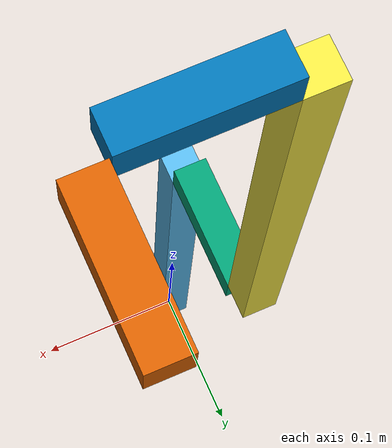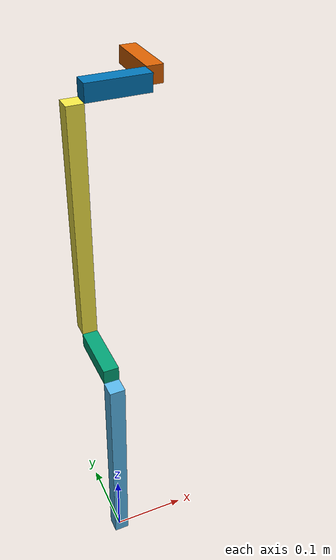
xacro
<?xml version="1.0" encoding="utf-8"?>
<robot xmlns:xacro="http://www.ros.org/wiki/xacro" name="stick">
  <!--Input arguments-->
  <xacro:arg name="xyz" default="0 0 0" />
  <xacro:arg name="rpy" default="0 0 0" />
  <xacro:arg name="robot_name" default="stick" />

  <!--Gazebo requires a joint to a link called "world" for statically mounted robots-->
  <link name="world" />
  <joint name="world_joint" type="fixed">
    <origin xyz="$(arg xyz)" rpy="$(arg rpy)" />
    <parent link="world" />
    <child link="$(arg robot_name)_link1" />
  </joint>

  <!--Create stick example links-->
  <link name="$(arg robot_name)_link1">
    <visual>
      <origin xyz="0 0 0.15" />
      <geometry>
        <box size="0.02 0.02 0.3" />
      </geometry>
    </visual>
    <collision>
      <origin xyz="0 0 0.15" />
      <geometry>
        <box size="0.02 0.02 0.3" />
      </geometry>
    </collision>
    <inertial>
      <origin xyz="0 0 0.15" rpy="0 0 0"/>
      <mass value="0.24"/>
      <inertia ixx="1.808e-03" ixy="0.0" ixz="0.0" iyy="1.808e-03" iyz="0.0" izz="1.6e-05"/>
    </inertial>
  </link>
  <link name="$(arg robot_name)_link2">
    <visual>
      <origin xyz="0 0 0.0375" />
      <geometry>
        <box size="0.02 0.02 0.075" />
      </geometry>
    </visual>
    <collision>
      <origin xyz="0 0 0.0375" />
      <geometry>
        <box size="0.02 0.02 0.075" />
      </geometry>
    </collision>
    <inertial>
      <origin xyz="0 0 0.0375" rpy="0 0 0"/>
      <mass value="0.06"/>
      <inertia ixx="3.0125e-05" ixy="0.0" ixz="0.0" iyy="3.0125e-05" iyz="0.0" izz="4.0000e-06"/>
    </inertial>
  </link>
  <link name="$(arg robot_name)_link3">
    <visual>
      <origin xyz="0 0 0.15" />
      <geometry>
        <box size="0.02 0.02 0.3" />
      </geometry>
    </visual>
    <collision>
      <origin xyz="0 0 0.15" />
      <geometry>
        <box size="0.02 0.02 0.3" />
      </geometry>
    </collision>
    <inertial>
      <origin xyz="0 0 0.15" rpy="0 0 0"/>
      <mass value="0.24"/>
      <inertia ixx="1.808e-03" ixy="0.0" ixz="0.0" iyy="1.808e-03" iyz="0.0" izz="1.6e-05"/>
    </inertial>
  </link>
  <link name="$(arg robot_name)_link4">
    <visual>
      <origin xyz="0 0 0.0375" />
      <geometry>
        <box size="0.02 0.02 0.075" />
      </geometry>
    </visual>
    <collision>
      <origin xyz="0 0 0.0375" />
      <geometry>
        <box size="0.02 0.02 0.075" />
      </geometry>
    </collision>
    <inertial>
      <origin xyz="0 0 0.0375" rpy="0 0 0"/>
      <mass value="0.06"/>
      <inertia ixx="3.0125e-05" ixy="0.0" ixz="0.0" iyy="3.0125e-05" iyz="0.0" izz="4.0000e-06"/>
    </inertial>
  </link>
  <link name="$(arg robot_name)_link5">
    <visual>
      <origin xyz="0 0 0.0375" />
      <geometry>
        <box size="0.02 0.02 0.075" />
      </geometry>
    </visual>
    <collision>
      <origin xyz="0 0 0.0375" />
      <geometry>
        <box size="0.02 0.02 0.075" />
      </geometry>
    </collision>
    <inertial>
      <origin xyz="0 0 0.0375" rpy="0 0 0"/>
      <mass value="0.06"/>
      <inertia ixx="3.0125e-05" ixy="0.0" ixz="0.0" iyy="3.0125e-05" iyz="0.0" izz="4.0000e-06"/>
    </inertial>
  </link>

  <!--Create stick joints-->
  <joint name="$(arg robot_name)_joint1" type="revolute">
    <origin xyz="0 0.01 0.31" rpy="${-pi/2} 0 0"/>
    <parent link="$(arg robot_name)_link1"/>
    <child link="$(arg robot_name)_link2"/>
    <axis xyz="0 0 1"/>
    <limit acceleration="15" lower="-2.9671" effort="87" upper="2.9671" velocity="2.5"/>
    <dynamics damping="0.003"/>
  </joint>
  <joint name="$(arg robot_name)_joint2" type="revolute">
    <origin xyz="0 -0.01 0.085" rpy="${pi/2} 0 0"/>
    <parent link="$(arg robot_name)_link2"/>
    <child link="$(arg robot_name)_link3"/>
    <axis xyz="0 0 1"/>
    <limit acceleration="15" lower="-2.9671" effort="87" upper="2.9671" velocity="2.5"/>
    <dynamics damping="0.003"/>
  </joint>
  <joint name="$(arg robot_name)_joint3" type="revolute">
    <origin xyz="0.01 0.0 0.31" rpy="0 ${pi/2} 0"/>
    <parent link="$(arg robot_name)_link3"/>
    <child link="$(arg robot_name)_link4"/>
    <axis xyz="0 0 1"/>
    <limit acceleration="15" lower="-2.9671" effort="87" upper="2.9671" velocity="2.5"/>
    <dynamics damping="0.003"/>
  </joint>
  <joint name="$(arg robot_name)_joint4" type="revolute">
    <origin xyz="0 0.01 0.086" rpy="-${pi/2} 0 0"/>
    <parent link="$(arg robot_name)_link4"/>
    <child link="$(arg robot_name)_link5"/>
    <axis xyz="0 0 1"/>
    <limit acceleration="15" lower="-2.9671" effort="87" upper="2.9671" velocity="2.5"/>
    <dynamics damping="0.003"/>
  </joint>

  <!--Create hardware interfaces-->
  <gazebo reference="$(arg robot_name)_joint1">
    <!-- Needed for ODE to output external wrenches on joints -->
    <provideFeedback>true</provideFeedback>
  </gazebo>
  <gazebo reference="$(arg robot_name)_joint2">
    <!-- Needed for ODE to output external wrenches on joints -->
    <provideFeedback>true</provideFeedback>
  </gazebo>
  <gazebo reference="$(arg robot_name)_joint3">
    <!-- Needed for ODE to output external wrenches on joints -->
    <provideFeedback>true</provideFeedback>
  </gazebo>
  <gazebo reference="$(arg robot_name)_joint4">
    <!-- Needed for ODE to output external wrenches on joints -->
    <provideFeedback>true</provideFeedback>
  </gazebo>

  <transmission name="$(arg robot_name)_joint1_transmission">
    <type>transmission_interface/SimpleTransmission</type>
    <joint name="$(arg robot_name)_joint1">
      <hardwareInterface>hardware_interface/EffortJointInterface</hardwareInterface>
    </joint>
    <actuator name="$(arg robot_name)_joint1_motor">
      <hardwareInterface>hardware_interface/EffortJointInterface</hardwareInterface>
    </actuator>
  </transmission>
  <transmission name="$(arg robot_name)_joint2_transmission">
    <type>transmission_interface/SimpleTransmission</type>
    <joint name="$(arg robot_name)_joint2">
      <hardwareInterface>hardware_interface/EffortJointInterface</hardwareInterface>
    </joint>
    <actuator name="$(arg robot_name)_joint2_motor">
      <hardwareInterface>hardware_interface/EffortJointInterface</hardwareInterface>
    </actuator>
  </transmission>
  <transmission name="$(arg robot_name)_joint3_transmission">
    <type>transmission_interface/SimpleTransmission</type>
    <joint name="$(arg robot_name)_joint3">
      <hardwareInterface>hardware_interface/EffortJointInterface</hardwareInterface>
    </joint>
    <actuator name="$(arg robot_name)_joint3_motor">
      <hardwareInterface>hardware_interface/EffortJointInterface</hardwareInterface>
    </actuator>
  </transmission>
  <transmission name="$(arg robot_name)_joint4_transmission">
    <type>transmission_interface/SimpleTransmission</type>
    <joint name="$(arg robot_name)_joint4">
      <hardwareInterface>hardware_interface/EffortJointInterface</hardwareInterface>
    </joint>
    <actuator name="$(arg robot_name)_joint4_motor">
      <hardwareInterface>hardware_interface/EffortJointInterface</hardwareInterface>
    </actuator>
  </transmission>

  <!--Load gazebo controller plugin-->
  <gazebo>
    <plugin name="gazebo_ros_control" filename="libgazebo_ros_control.so">
      <controlPeriod>0.001</controlPeriod>
      <robotSimType>gazebo_ros_control/DefaultRobotHWSim</robotSimType>
    </plugin>
    <self_collide>true</self_collide>
  </gazebo>
</robot>
